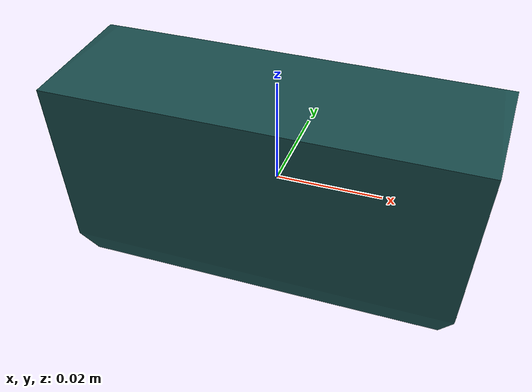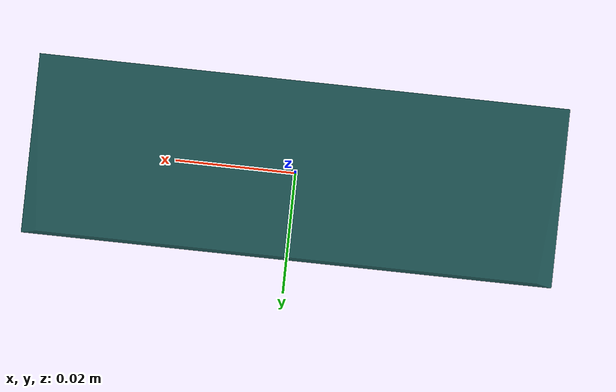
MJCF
<mujoco model="shapenetsem22">
  <asset>
    <mesh file="meshes/shapenetsem22/shapenetsem22_0.stl" name="shapenetsem22_0" scale="0.65 0.65 0.65"/>
    <texture file="../textures/texture22-0.png" type="2d" name="tex-sem22"/>
    <material name="sem22" reflectance="0.7" texrepeat="90 90" texture="tex-sem22" texuniform="true"/>
  </asset>
  <worldbody>
    <body>
      <body name="collision">
        <geom pos="0 0 0" mesh="shapenetsem22_0" type="mesh" solimp="0.998 0.998 0.001" solref="0.001 1" density="100" friction="0.95 0.3 0.1" rgba="0.1 0.31 0.31 1" group="1" condim="4"/>
      </body>
      <body name="visual">
        <geom pos="0 0 0" mesh="shapenetsem22_0" type="mesh" rgba="0 1 0 1" conaffinity="0" contype="0" group="0" mass="0.0001"/>
      </body>
      <site rgba="0 0 0 0" size="0.005" pos="0 0 -0.06" name="bottom_site"/>
      <site rgba="0 0 0 0" size="0.005" pos="0 0 0.04" name="top_site"/>
      <site rgba="0 0 0 0" size="0.005" pos="0.025 0.025 0" name="horizontal_radius_site"/>
    </body>
  </worldbody>
</mujoco>
